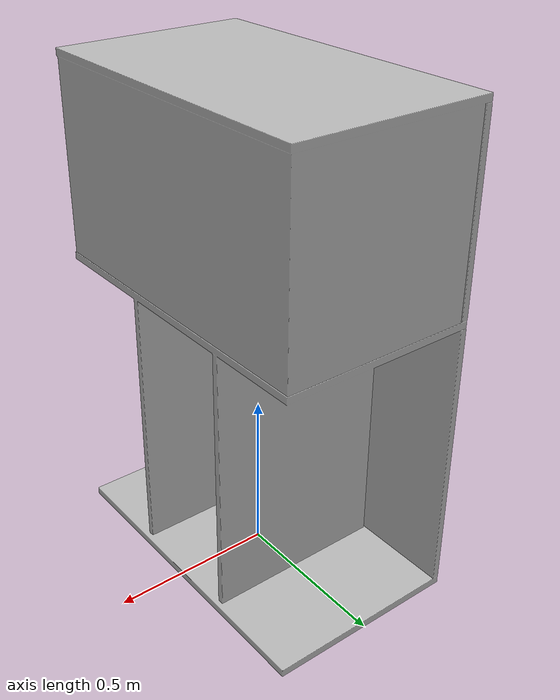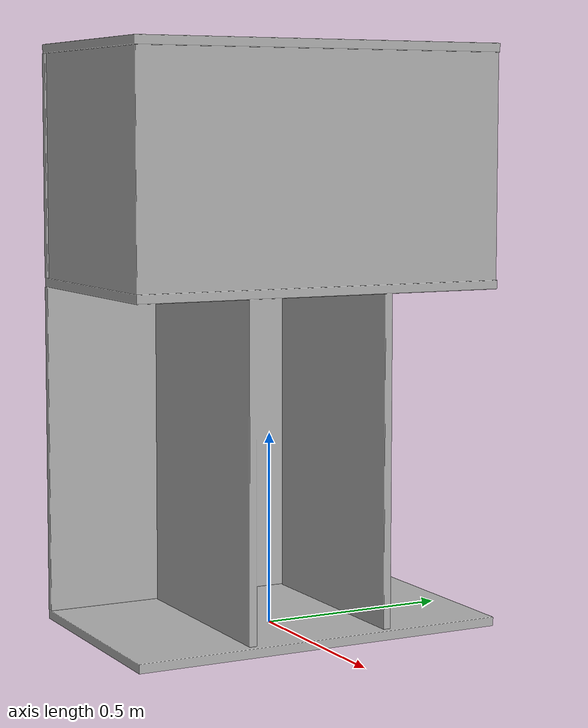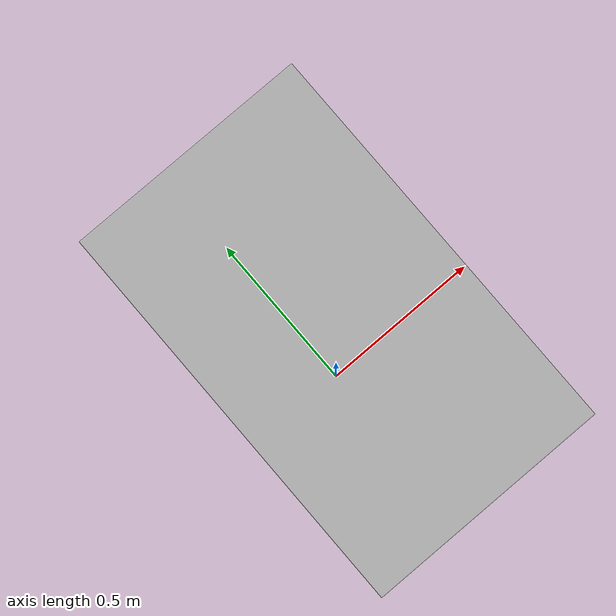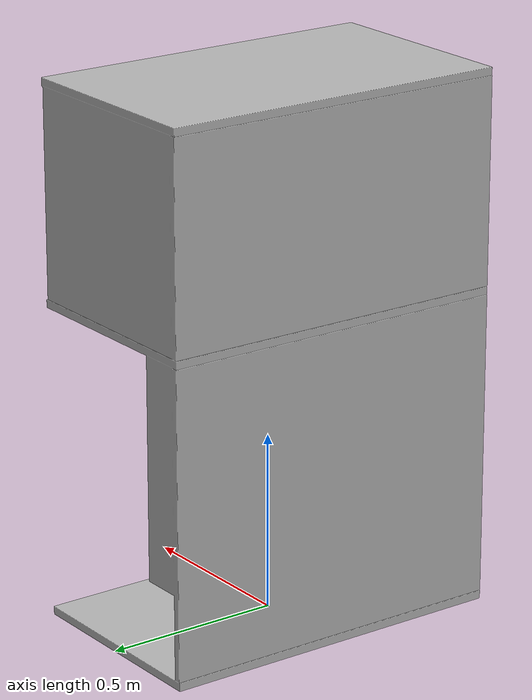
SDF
<?xml version='1.0'?>
<sdf version='1.4'>
  <model name='341'>
    <pose>0 0 0 0 0 0</pose>
    <static>true</static>
    <link name='link'>
      <collision name='collision'>
        <pose>0 0 0 0 0 0</pose>
        <geometry>
          <box>
            <size>0.6 1.00228 2</size>
          </box>
        </geometry>
      </collision>
      <visual name='visual'>
        <pose>0 0 0 0 0 0</pose>
        <geometry>
          <mesh><uri>model://341/341.dae</uri></mesh>
        </geometry>
      </visual>
    </link>
  </model>
</sdf>
